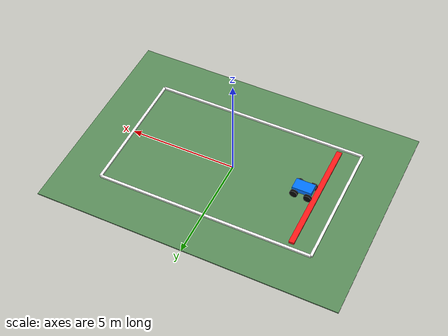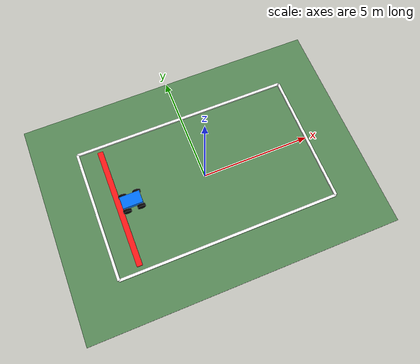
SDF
<?xml version="1.0" ?>
<sdf version="1.9">
  <world name="simple_track">
    <physics name="default_physics" type="ignored">
      <max_step_size>0.001</max_step_size>
      <real_time_factor>1.0</real_time_factor>
    </physics>

    <scene>
      <ambient>0.45 0.45 0.45 1</ambient>
      <background>0.78 0.86 0.95 1</background>
    </scene>

    <light name="sun" type="directional">
      <cast_shadows>true</cast_shadows>
      <pose>0 0 10 0 0 0</pose>
      <diffuse>0.8 0.8 0.8 1</diffuse>
      <specular>0.2 0.2 0.2 1</specular>
      <direction>-0.5 0.3 -1</direction>
    </light>

    <model name="flat_ground">
      <static>true</static>
      <link name="ground_link">
        <collision name="ground_collision">
          <geometry>
            <box>
              <size>14 10 0.05</size>
            </box>
          </geometry>
        </collision>
        <visual name="ground_visual">
          <geometry>
            <box>
              <size>14 10 0.05</size>
            </box>
          </geometry>
          <material>
            <ambient>0.35 0.55 0.35 1</ambient>
            <diffuse>0.35 0.55 0.35 1</diffuse>
          </material>
        </visual>
      </link>
    </model>

    <!-- Four low blocks draw a simple rectangular track boundary. -->
    <model name="track_north_line">
      <static>true</static>
      <pose>0 3 0.08 0 0 0</pose>
      <link name="link">
        <visual name="visual">
          <geometry><box><size>10 0.12 0.08</size></box></geometry>
          <material><ambient>1 1 1 1</ambient><diffuse>1 1 1 1</diffuse></material>
        </visual>
      </link>
    </model>

    <model name="track_south_line">
      <static>true</static>
      <pose>0 -3 0.08 0 0 0</pose>
      <link name="link">
        <visual name="visual">
          <geometry><box><size>10 0.12 0.08</size></box></geometry>
          <material><ambient>1 1 1 1</ambient><diffuse>1 1 1 1</diffuse></material>
        </visual>
      </link>
    </model>

    <model name="track_east_line">
      <static>true</static>
      <pose>5 0 0.08 0 0 0</pose>
      <link name="link">
        <visual name="visual">
          <geometry><box><size>0.12 6 0.08</size></box></geometry>
          <material><ambient>1 1 1 1</ambient><diffuse>1 1 1 1</diffuse></material>
        </visual>
      </link>
    </model>

    <model name="track_west_line">
      <static>true</static>
      <pose>-5 0 0.08 0 0 0</pose>
      <link name="link">
        <visual name="visual">
          <geometry><box><size>0.12 6 0.08</size></box></geometry>
          <material><ambient>1 1 1 1</ambient><diffuse>1 1 1 1</diffuse></material>
        </visual>
      </link>
    </model>

    <model name="start_line">
      <static>true</static>
      <pose>-4 0 0.1 0 0 0</pose>
      <link name="link">
        <visual name="visual">
          <geometry>
            <box>
              <size>0.25 5.5 0.1</size>
            </box>
          </geometry>
          <material>
            <ambient>1 0.1 0.1 1</ambient>
            <diffuse>1 0.1 0.1 1</diffuse>
          </material>
        </visual>
      </link>
    </model>

    <!-- Spawn the simple rover just after the red start line. -->
    <include>
      <name>cosmo_rover</name>
      <uri>model://cosmo_rover</uri>
      <pose>-3.4 0 0.03 0 0 0</pose>
    </include>
  </world>
</sdf>

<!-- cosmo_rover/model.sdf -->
<sdf version="1.9">
  <model name="cosmo_rover">
    <!-- The rover is dynamic so the DiffDrive plugin can move it. -->
    <static>false</static>

    <!-- Main rectangular chassis. It is the parent link for the wheel joints. -->
    <link name="chassis">
      <pose>0 0 0.34 0 0 0</pose>
      <inertial>
        <mass>4.0</mass>
        <inertia>
          <ixx>0.12</ixx>
          <ixy>0.0</ixy>
          <ixz>0.0</ixz>
          <iyy>0.32</iyy>
          <iyz>0.0</iyz>
          <izz>0.38</izz>
        </inertia>
      </inertial>
      <collision name="chassis_collision">
        <geometry>
          <box>
            <size>0.9 0.55 0.22</size>
          </box>
        </geometry>
      </collision>
      <visual name="chassis_visual">
        <geometry>
          <box>
            <size>0.9 0.55 0.22</size>
          </box>
        </geometry>
        <material>
          <ambient>0.0 0.45 1.0 1</ambient>
          <diffuse>0.0 0.45 1.0 1</diffuse>
        </material>
      </visual>
    </link>

    <!-- Each wheel is a cylinder rotated so its axle is along the Y axis. -->
    <link name="front_left_wheel">
      <pose>0.32 0.35 0.18 1.5708 0 0</pose>
      <inertial>
        <mass>0.4</mass>
        <inertia>
          <ixx>0.004</ixx>
          <ixy>0.0</ixy>
          <ixz>0.0</ixz>
          <iyy>0.004</iyy>
          <iyz>0.0</iyz>
          <izz>0.006</izz>
        </inertia>
      </inertial>
      <collision name="collision">
        <geometry>
          <cylinder>
            <radius>0.18</radius>
            <length>0.12</length>
          </cylinder>
        </geometry>
      </collision>
      <visual name="visual">
        <geometry>
          <cylinder>
            <radius>0.18</radius>
            <length>0.12</length>
          </cylinder>
        </geometry>
        <material>
          <ambient>0.02 0.02 0.02 1</ambient>
          <diffuse>0.02 0.02 0.02 1</diffuse>
        </material>
      </visual>
    </link>

    <link name="front_right_wheel">
      <pose>0.32 -0.35 0.18 1.5708 0 0</pose>
      <inertial>
        <mass>0.4</mass>
        <inertia>
          <ixx>0.004</ixx>
          <ixy>0.0</ixy>
          <ixz>0.0</ixz>
          <iyy>0.004</iyy>
          <iyz>0.0</iyz>
          <izz>0.006</izz>
        </inertia>
      </inertial>
      <collision name="collision">
        <geometry>
          <cylinder>
            <radius>0.18</radius>
            <length>0.12</length>
          </cylinder>
        </geometry>
      </collision>
      <visual name="visual">
        <geometry>
          <cylinder>
            <radius>0.18</radius>
            <length>0.12</length>
          </cylinder>
        </geometry>
        <material>
          <ambient>0.02 0.02 0.02 1</ambient>
          <diffuse>0.02 0.02 0.02 1</diffuse>
        </material>
      </visual>
    </link>

    <link name="rear_left_wheel">
      <pose>-0.32 0.35 0.18 1.5708 0 0</pose>
      <inertial>
        <mass>0.4</mass>
        <inertia>
          <ixx>0.004</ixx>
          <ixy>0.0</ixy>
          <ixz>0.0</ixz>
          <iyy>0.004</iyy>
          <iyz>0.0</iyz>
          <izz>0.006</izz>
        </inertia>
      </inertial>
      <collision name="collision">
        <geometry>
          <cylinder>
            <radius>0.18</radius>
            <length>0.12</length>
          </cylinder>
        </geometry>
      </collision>
      <visual name="visual">
        <geometry>
          <cylinder>
            <radius>0.18</radius>
            <length>0.12</length>
          </cylinder>
        </geometry>
        <material>
          <ambient>0.02 0.02 0.02 1</ambient>
          <diffuse>0.02 0.02 0.02 1</diffuse>
        </material>
      </visual>
    </link>

    <link name="rear_right_wheel">
      <pose>-0.32 -0.35 0.18 1.5708 0 0</pose>
      <inertial>
        <mass>0.4</mass>
        <inertia>
          <ixx>0.004</ixx>
          <ixy>0.0</ixy>
          <ixz>0.0</ixz>
          <iyy>0.004</iyy>
          <iyz>0.0</iyz>
          <izz>0.006</izz>
        </inertia>
      </inertial>
      <collision name="collision">
        <geometry>
          <cylinder>
            <radius>0.18</radius>
            <length>0.12</length>
          </cylinder>
        </geometry>
      </collision>
      <visual name="visual">
        <geometry>
          <cylinder>
            <radius>0.18</radius>
            <length>0.12</length>
          </cylinder>
        </geometry>
        <material>
          <ambient>0.02 0.02 0.02 1</ambient>
          <diffuse>0.02 0.02 0.02 1</diffuse>
        </material>
      </visual>
    </link>

    <!-- Revolute wheel joints connect the wheels to the chassis. -->
    <joint name="front_left_wheel_joint" type="revolute">
      <parent>chassis</parent>
      <child>front_left_wheel</child>
      <axis>
        <xyz>0 1 0</xyz>
      </axis>
    </joint>

    <joint name="front_right_wheel_joint" type="revolute">
      <parent>chassis</parent>
      <child>front_right_wheel</child>
      <axis>
        <xyz>0 1 0</xyz>
      </axis>
    </joint>

    <joint name="rear_left_wheel_joint" type="revolute">
      <parent>chassis</parent>
      <child>rear_left_wheel</child>
      <axis>
        <xyz>0 1 0</xyz>
      </axis>
    </joint>

    <joint name="rear_right_wheel_joint" type="revolute">
      <parent>chassis</parent>
      <child>rear_right_wheel</child>
      <axis>
        <xyz>0 1 0</xyz>
      </axis>
    </joint>

    <!--
      Gazebo DiffDrive reads Twist commands on /cmd_vel.
      A ROS-Gazebo bridge in drive_rover.launch.py forwards ROS 2 /cmd_vel
      messages to this Gazebo topic.
    -->
    <plugin filename="gz-sim-diff-drive-system" name="gz::sim::systems::DiffDrive">
      <left_joint>front_left_wheel_joint</left_joint>
      <left_joint>rear_left_wheel_joint</left_joint>
      <right_joint>front_right_wheel_joint</right_joint>
      <right_joint>rear_right_wheel_joint</right_joint>
      <wheel_separation>0.7</wheel_separation>
      <wheel_radius>0.18</wheel_radius>
      <odom_publish_frequency>10</odom_publish_frequency>
      <max_linear_acceleration>1.0</max_linear_acceleration>
      <max_angular_acceleration>2.0</max_angular_acceleration>
      <topic>/cmd_vel</topic>
    </plugin>
  </model>
</sdf>
